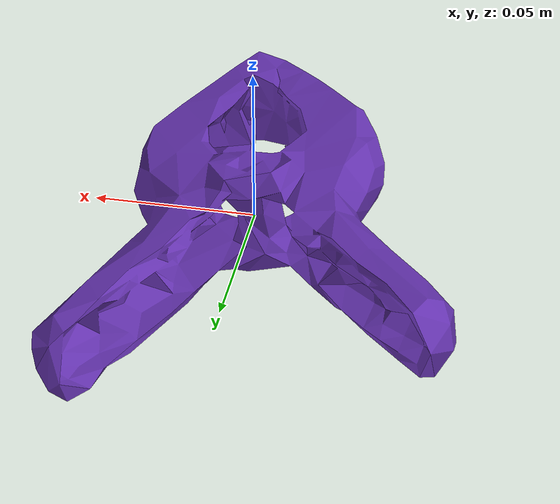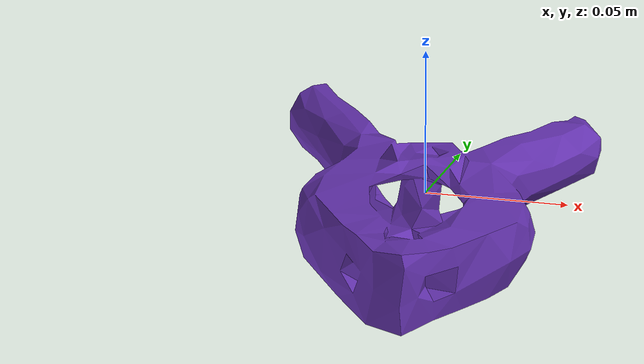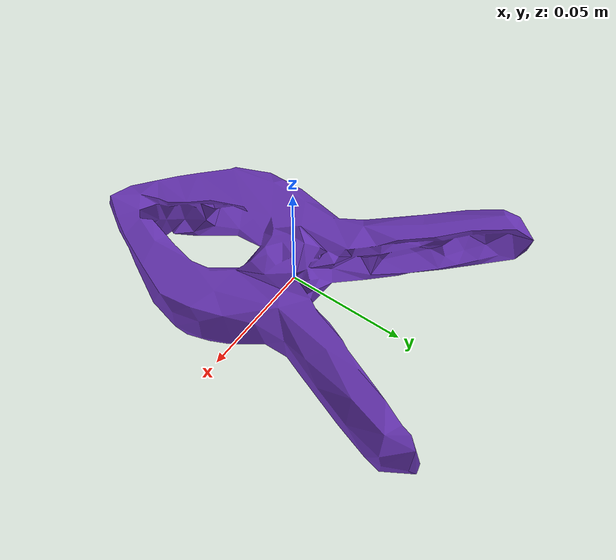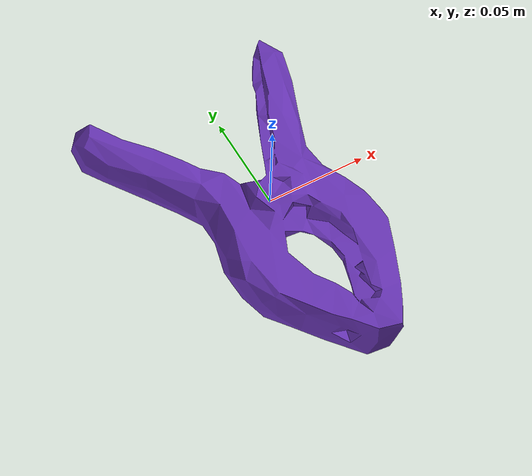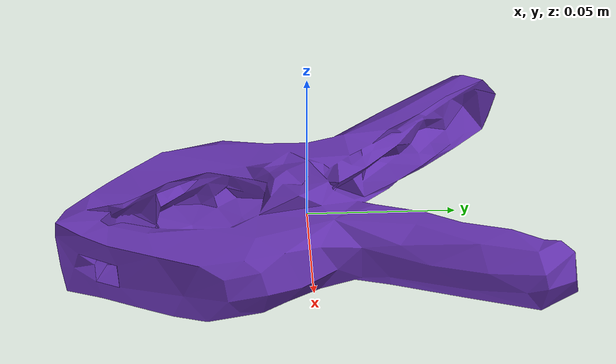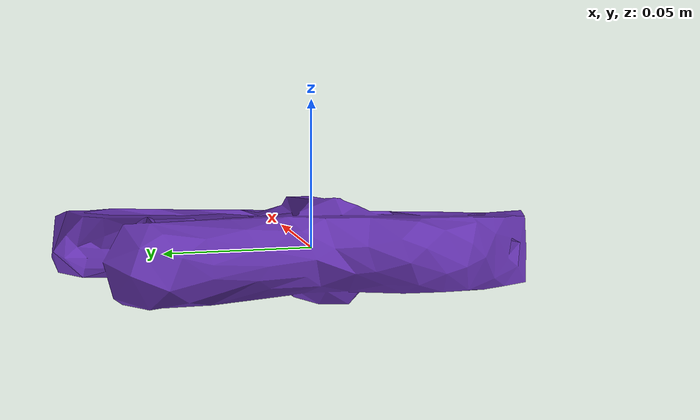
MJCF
<mujoco model="top_watertight_tiny">

  <asset>
    <mesh file="top_watertight_tiny.obj"/>
    <mesh file="top_watertight_tiny_collision_0.obj"/>
    <mesh file="top_watertight_tiny_collision_1.obj"/>
    <mesh file="top_watertight_tiny_collision_2.obj"/>
    <mesh file="top_watertight_tiny_collision_3.obj"/>
    <mesh file="top_watertight_tiny_collision_4.obj"/>
    <mesh file="top_watertight_tiny_collision_5.obj"/>
    <mesh file="top_watertight_tiny_collision_6.obj"/>
    <mesh file="top_watertight_tiny_collision_7.obj"/>
    <mesh file="top_watertight_tiny_collision_8.obj"/>
    <mesh file="top_watertight_tiny_collision_9.obj"/>
    <mesh file="top_watertight_tiny_collision_10.obj"/>
    <mesh file="top_watertight_tiny_collision_11.obj"/>
    <mesh file="top_watertight_tiny_collision_12.obj"/>
    <mesh file="top_watertight_tiny_collision_13.obj"/>
    <mesh file="top_watertight_tiny_collision_14.obj"/>
    <mesh file="top_watertight_tiny_collision_15.obj"/>
    <mesh file="top_watertight_tiny_collision_16.obj"/>
    <mesh file="top_watertight_tiny_collision_17.obj"/>
    <mesh file="top_watertight_tiny_collision_18.obj"/>
    <mesh file="top_watertight_tiny_collision_19.obj"/>
    <mesh file="top_watertight_tiny_collision_20.obj"/>
    <mesh file="top_watertight_tiny_collision_21.obj"/>
    <mesh file="top_watertight_tiny_collision_22.obj"/>
    <mesh file="top_watertight_tiny_collision_23.obj"/>
    <mesh file="top_watertight_tiny_collision_24.obj"/>
    <mesh file="top_watertight_tiny_collision_25.obj"/>
    <mesh file="top_watertight_tiny_collision_26.obj"/>
    <mesh file="top_watertight_tiny_collision_27.obj"/>
    <mesh file="top_watertight_tiny_collision_28.obj"/>
    <mesh file="top_watertight_tiny_collision_29.obj"/>
    <mesh file="top_watertight_tiny_collision_30.obj"/>
    <mesh file="top_watertight_tiny_collision_31.obj"/>
    <mesh file="top_watertight_tiny_collision_32.obj"/>
    <mesh file="top_watertight_tiny_collision_33.obj"/>
    <mesh file="top_watertight_tiny_collision_34.obj"/>
    <mesh file="top_watertight_tiny_collision_35.obj"/>
    <mesh file="top_watertight_tiny_collision_36.obj"/>
    <mesh file="top_watertight_tiny_collision_37.obj"/>
    <mesh file="top_watertight_tiny_collision_38.obj"/>
    <mesh file="top_watertight_tiny_collision_39.obj"/>
    <mesh file="top_watertight_tiny_collision_40.obj"/>
    <mesh file="top_watertight_tiny_collision_41.obj"/>
    <mesh file="top_watertight_tiny_collision_42.obj"/>
    <mesh file="top_watertight_tiny_collision_43.obj"/>
    <mesh file="top_watertight_tiny_collision_44.obj"/>
    <mesh file="top_watertight_tiny_collision_45.obj"/>
    <mesh file="top_watertight_tiny_collision_46.obj"/>
    <mesh file="top_watertight_tiny_collision_47.obj"/>
    <mesh file="top_watertight_tiny_collision_48.obj"/>
    <mesh file="top_watertight_tiny_collision_49.obj"/>
    <mesh file="top_watertight_tiny_collision_50.obj"/>
    <mesh file="top_watertight_tiny_collision_51.obj"/>
    <mesh file="top_watertight_tiny_collision_52.obj"/>
    <mesh file="top_watertight_tiny_collision_53.obj"/>
    <mesh file="top_watertight_tiny_collision_54.obj"/>
    <mesh file="top_watertight_tiny_collision_55.obj"/>
    <mesh file="top_watertight_tiny_collision_56.obj"/>
    <mesh file="top_watertight_tiny_collision_57.obj"/>
    <mesh file="top_watertight_tiny_collision_58.obj"/>
    <mesh file="top_watertight_tiny_collision_59.obj"/>
    <mesh file="top_watertight_tiny_collision_60.obj"/>
    <mesh file="top_watertight_tiny_collision_61.obj"/>
  </asset>
  <worldbody>
    <body name="top_watertight_tiny">
      <freejoint/>
      <geom solimp="0.90 0.95 0.001" solref="0.02 1.0" density="100" friction="0.95 0.4 0.3" rgba="0.4 0.2 0.7 1" mesh="top_watertight_tiny" group="2" type="mesh" contype="0" conaffinity="0"/>
      <geom solimp="0.90 0.95 0.001" solref="0.02 1.0" density="100" friction="0.95 0.4 0.3" mesh="top_watertight_tiny_collision_0" rgba="0.46268127099822176 0.44613543929367694 0.6037512424551649 1" group="3" type="mesh"/>
      <geom solimp="0.90 0.95 0.001" solref="0.02 1.0" density="100" friction="0.95 0.4 0.3" mesh="top_watertight_tiny_collision_1" rgba="0.57390092260208 0.13734698815139423 0.11121147662220487 1" group="3" type="mesh"/>
      <geom solimp="0.90 0.95 0.001" solref="0.02 1.0" density="100" friction="0.95 0.4 0.3" mesh="top_watertight_tiny_collision_2" rgba="0.6755386977435273 0.8623598723239746 0.5593617677768191 1" group="3" type="mesh"/>
      <geom solimp="0.90 0.95 0.001" solref="0.02 1.0" density="100" friction="0.95 0.4 0.3" mesh="top_watertight_tiny_collision_3" rgba="0.9710695342765243 0.6719415622387462 0.7965022479027059 1" group="3" type="mesh"/>
      <geom solimp="0.90 0.95 0.001" solref="0.02 1.0" density="100" friction="0.95 0.4 0.3" mesh="top_watertight_tiny_collision_4" rgba="0.06658857949424368 0.44778342721501463 0.37577722353769716 1" group="3" type="mesh"/>
      <geom solimp="0.90 0.95 0.001" solref="0.02 1.0" density="100" friction="0.95 0.4 0.3" mesh="top_watertight_tiny_collision_5" rgba="0.8515932548861951 0.6058850084302767 0.8633722867348466 1" group="3" type="mesh"/>
      <geom solimp="0.90 0.95 0.001" solref="0.02 1.0" density="100" friction="0.95 0.4 0.3" mesh="top_watertight_tiny_collision_6" rgba="0.06017040027398923 0.2171380553857437 0.9439310942401248 1" group="3" type="mesh"/>
      <geom solimp="0.90 0.95 0.001" solref="0.02 1.0" density="100" friction="0.95 0.4 0.3" mesh="top_watertight_tiny_collision_7" rgba="0.06775633607417253 0.3916701696194047 0.9878024062193546 1" group="3" type="mesh"/>
      <geom solimp="0.90 0.95 0.001" solref="0.02 1.0" density="100" friction="0.95 0.4 0.3" mesh="top_watertight_tiny_collision_8" rgba="0.20479055116830502 0.2372548679240042 0.9605887124626827 1" group="3" type="mesh"/>
      <geom solimp="0.90 0.95 0.001" solref="0.02 1.0" density="100" friction="0.95 0.4 0.3" mesh="top_watertight_tiny_collision_9" rgba="0.8802977203090246 0.23515415765177394 0.5383413918563811 1" group="3" type="mesh"/>
      <geom solimp="0.90 0.95 0.001" solref="0.02 1.0" density="100" friction="0.95 0.4 0.3" mesh="top_watertight_tiny_collision_10" rgba="0.2616393884726739 0.7895112124847435 0.14673366645719144 1" group="3" type="mesh"/>
      <geom solimp="0.90 0.95 0.001" solref="0.02 1.0" density="100" friction="0.95 0.4 0.3" mesh="top_watertight_tiny_collision_11" rgba="0.37939304599245294 0.5714784149014092 0.22508265824461438 1" group="3" type="mesh"/>
      <geom solimp="0.90 0.95 0.001" solref="0.02 1.0" density="100" friction="0.95 0.4 0.3" mesh="top_watertight_tiny_collision_12" rgba="0.277049074968967 0.9305881327906584 0.34751073747689676 1" group="3" type="mesh"/>
      <geom solimp="0.90 0.95 0.001" solref="0.02 1.0" density="100" friction="0.95 0.4 0.3" mesh="top_watertight_tiny_collision_13" rgba="0.9001801481248393 0.9834714920245772 0.5157571940747403 1" group="3" type="mesh"/>
      <geom solimp="0.90 0.95 0.001" solref="0.02 1.0" density="100" friction="0.95 0.4 0.3" mesh="top_watertight_tiny_collision_14" rgba="0.19876518593322468 0.3565296516964015 0.2689963262483561 1" group="3" type="mesh"/>
      <geom solimp="0.90 0.95 0.001" solref="0.02 1.0" density="100" friction="0.95 0.4 0.3" mesh="top_watertight_tiny_collision_15" rgba="0.5848611630302968 0.55350986448608 0.06476318390182201 1" group="3" type="mesh"/>
      <geom solimp="0.90 0.95 0.001" solref="0.02 1.0" density="100" friction="0.95 0.4 0.3" mesh="top_watertight_tiny_collision_16" rgba="0.22822790384600056 0.40235282190474086 0.1333671136917367 1" group="3" type="mesh"/>
      <geom solimp="0.90 0.95 0.001" solref="0.02 1.0" density="100" friction="0.95 0.4 0.3" mesh="top_watertight_tiny_collision_17" rgba="0.24737108595192348 0.8352502356035749 0.09507051922961851 1" group="3" type="mesh"/>
      <geom solimp="0.90 0.95 0.001" solref="0.02 1.0" density="100" friction="0.95 0.4 0.3" mesh="top_watertight_tiny_collision_18" rgba="0.5845121004278806 0.373227917386719 0.7436200473185841 1" group="3" type="mesh"/>
      <geom solimp="0.90 0.95 0.001" solref="0.02 1.0" density="100" friction="0.95 0.4 0.3" mesh="top_watertight_tiny_collision_19" rgba="0.3673344876905159 0.6127818201218921 0.0715213816365532 1" group="3" type="mesh"/>
      <geom solimp="0.90 0.95 0.001" solref="0.02 1.0" density="100" friction="0.95 0.4 0.3" mesh="top_watertight_tiny_collision_20" rgba="0.8249614752242393 0.2644502075870059 0.41761232987629415 1" group="3" type="mesh"/>
      <geom solimp="0.90 0.95 0.001" solref="0.02 1.0" density="100" friction="0.95 0.4 0.3" mesh="top_watertight_tiny_collision_21" rgba="0.9827943860031765 0.15170056447137048 0.9934812945019279 1" group="3" type="mesh"/>
      <geom solimp="0.90 0.95 0.001" solref="0.02 1.0" density="100" friction="0.95 0.4 0.3" mesh="top_watertight_tiny_collision_22" rgba="0.1193889918687685 0.3339243280920533 0.6554278990363508 1" group="3" type="mesh"/>
      <geom solimp="0.90 0.95 0.001" solref="0.02 1.0" density="100" friction="0.95 0.4 0.3" mesh="top_watertight_tiny_collision_23" rgba="0.05313563911766328 0.14904314981159195 0.2844856202689452 1" group="3" type="mesh"/>
      <geom solimp="0.90 0.95 0.001" solref="0.02 1.0" density="100" friction="0.95 0.4 0.3" mesh="top_watertight_tiny_collision_24" rgba="0.8108036756317544 0.030333149405684434 0.6839800201838122 1" group="3" type="mesh"/>
      <geom solimp="0.90 0.95 0.001" solref="0.02 1.0" density="100" friction="0.95 0.4 0.3" mesh="top_watertight_tiny_collision_25" rgba="0.1130211126690791 0.11144736031547531 0.6183930559824004 1" group="3" type="mesh"/>
      <geom solimp="0.90 0.95 0.001" solref="0.02 1.0" density="100" friction="0.95 0.4 0.3" mesh="top_watertight_tiny_collision_26" rgba="0.707380617322636 0.033008273557914025 0.8685465430292756 1" group="3" type="mesh"/>
      <geom solimp="0.90 0.95 0.001" solref="0.02 1.0" density="100" friction="0.95 0.4 0.3" mesh="top_watertight_tiny_collision_27" rgba="0.8217291807131685 0.7227193086632488 0.4002978587569074 1" group="3" type="mesh"/>
      <geom solimp="0.90 0.95 0.001" solref="0.02 1.0" density="100" friction="0.95 0.4 0.3" mesh="top_watertight_tiny_collision_28" rgba="0.2072229673541176 0.2732958342204459 0.7779108382252461 1" group="3" type="mesh"/>
      <geom solimp="0.90 0.95 0.001" solref="0.02 1.0" density="100" friction="0.95 0.4 0.3" mesh="top_watertight_tiny_collision_29" rgba="0.017417326645723374 0.3266246698559121 0.8533430043032761 1" group="3" type="mesh"/>
      <geom solimp="0.90 0.95 0.001" solref="0.02 1.0" density="100" friction="0.95 0.4 0.3" mesh="top_watertight_tiny_collision_30" rgba="0.9318469828068848 0.5117458162108749 0.957208771522807 1" group="3" type="mesh"/>
      <geom solimp="0.90 0.95 0.001" solref="0.02 1.0" density="100" friction="0.95 0.4 0.3" mesh="top_watertight_tiny_collision_31" rgba="0.746561739475011 0.4229759776881509 0.6351979050445542 1" group="3" type="mesh"/>
      <geom solimp="0.90 0.95 0.001" solref="0.02 1.0" density="100" friction="0.95 0.4 0.3" mesh="top_watertight_tiny_collision_32" rgba="0.5739813623237269 0.9862021797471946 0.8491444784080426 1" group="3" type="mesh"/>
      <geom solimp="0.90 0.95 0.001" solref="0.02 1.0" density="100" friction="0.95 0.4 0.3" mesh="top_watertight_tiny_collision_33" rgba="0.4700256256167118 0.2244620488179655 0.3011971142824278 1" group="3" type="mesh"/>
      <geom solimp="0.90 0.95 0.001" solref="0.02 1.0" density="100" friction="0.95 0.4 0.3" mesh="top_watertight_tiny_collision_34" rgba="0.6567692623380379 0.8102504679025803 0.53910210475755 1" group="3" type="mesh"/>
      <geom solimp="0.90 0.95 0.001" solref="0.02 1.0" density="100" friction="0.95 0.4 0.3" mesh="top_watertight_tiny_collision_35" rgba="0.9359159994177946 0.07298062694813934 0.20618200740306847 1" group="3" type="mesh"/>
      <geom solimp="0.90 0.95 0.001" solref="0.02 1.0" density="100" friction="0.95 0.4 0.3" mesh="top_watertight_tiny_collision_36" rgba="0.7632060091382233 0.019168522189462744 0.22155220512414386 1" group="3" type="mesh"/>
      <geom solimp="0.90 0.95 0.001" solref="0.02 1.0" density="100" friction="0.95 0.4 0.3" mesh="top_watertight_tiny_collision_37" rgba="0.7572314595555747 0.10336005960443362 0.12290151737012966 1" group="3" type="mesh"/>
      <geom solimp="0.90 0.95 0.001" solref="0.02 1.0" density="100" friction="0.95 0.4 0.3" mesh="top_watertight_tiny_collision_38" rgba="0.7944489093459598 0.8285071532182623 0.5816944680963141 1" group="3" type="mesh"/>
      <geom solimp="0.90 0.95 0.001" solref="0.02 1.0" density="100" friction="0.95 0.4 0.3" mesh="top_watertight_tiny_collision_39" rgba="0.6369539292712871 0.6533603775478976 0.8807150313937363 1" group="3" type="mesh"/>
      <geom solimp="0.90 0.95 0.001" solref="0.02 1.0" density="100" friction="0.95 0.4 0.3" mesh="top_watertight_tiny_collision_40" rgba="0.3670596385904249 0.9559412514282833 0.3203810496028757 1" group="3" type="mesh"/>
      <geom solimp="0.90 0.95 0.001" solref="0.02 1.0" density="100" friction="0.95 0.4 0.3" mesh="top_watertight_tiny_collision_41" rgba="0.7546759554390982 0.9817521792359843 0.37245721642694807 1" group="3" type="mesh"/>
      <geom solimp="0.90 0.95 0.001" solref="0.02 1.0" density="100" friction="0.95 0.4 0.3" mesh="top_watertight_tiny_collision_42" rgba="0.7519702265149919 0.8563182951392837 0.6983172211476657 1" group="3" type="mesh"/>
      <geom solimp="0.90 0.95 0.001" solref="0.02 1.0" density="100" friction="0.95 0.4 0.3" mesh="top_watertight_tiny_collision_43" rgba="0.31785569986656526 0.7976609008328917 0.7724578473378445 1" group="3" type="mesh"/>
      <geom solimp="0.90 0.95 0.001" solref="0.02 1.0" density="100" friction="0.95 0.4 0.3" mesh="top_watertight_tiny_collision_44" rgba="0.9709020168817861 0.014983967384614938 0.6967217181741179 1" group="3" type="mesh"/>
      <geom solimp="0.90 0.95 0.001" solref="0.02 1.0" density="100" friction="0.95 0.4 0.3" mesh="top_watertight_tiny_collision_45" rgba="0.40175635901011797 0.7167245440545567 0.9562492914527109 1" group="3" type="mesh"/>
      <geom solimp="0.90 0.95 0.001" solref="0.02 1.0" density="100" friction="0.95 0.4 0.3" mesh="top_watertight_tiny_collision_46" rgba="0.20715356419301056 0.11271595945632995 0.42980715008039305 1" group="3" type="mesh"/>
      <geom solimp="0.90 0.95 0.001" solref="0.02 1.0" density="100" friction="0.95 0.4 0.3" mesh="top_watertight_tiny_collision_47" rgba="0.8782544611872798 0.53489543370042 0.11161747612792117 1" group="3" type="mesh"/>
      <geom solimp="0.90 0.95 0.001" solref="0.02 1.0" density="100" friction="0.95 0.4 0.3" mesh="top_watertight_tiny_collision_48" rgba="0.7387500604422994 0.05547313574824131 0.21564231056035799 1" group="3" type="mesh"/>
      <geom solimp="0.90 0.95 0.001" solref="0.02 1.0" density="100" friction="0.95 0.4 0.3" mesh="top_watertight_tiny_collision_49" rgba="0.6406767866467648 0.07387042632754559 0.33493277152359835 1" group="3" type="mesh"/>
      <geom solimp="0.90 0.95 0.001" solref="0.02 1.0" density="100" friction="0.95 0.4 0.3" mesh="top_watertight_tiny_collision_50" rgba="0.40241350855542957 0.7707488882635092 0.5268002355838377 1" group="3" type="mesh"/>
      <geom solimp="0.90 0.95 0.001" solref="0.02 1.0" density="100" friction="0.95 0.4 0.3" mesh="top_watertight_tiny_collision_51" rgba="0.9376188431863697 0.6918709556254893 0.9201740822484723 1" group="3" type="mesh"/>
      <geom solimp="0.90 0.95 0.001" solref="0.02 1.0" density="100" friction="0.95 0.4 0.3" mesh="top_watertight_tiny_collision_52" rgba="0.42142385258311177 0.6902989969683868 0.7731904664788538 1" group="3" type="mesh"/>
      <geom solimp="0.90 0.95 0.001" solref="0.02 1.0" density="100" friction="0.95 0.4 0.3" mesh="top_watertight_tiny_collision_53" rgba="0.316129196637824 0.02907120903420879 0.15491360416319377 1" group="3" type="mesh"/>
      <geom solimp="0.90 0.95 0.001" solref="0.02 1.0" density="100" friction="0.95 0.4 0.3" mesh="top_watertight_tiny_collision_54" rgba="0.33172470642279983 0.9811486549206623 0.3049611647316829 1" group="3" type="mesh"/>
      <geom solimp="0.90 0.95 0.001" solref="0.02 1.0" density="100" friction="0.95 0.4 0.3" mesh="top_watertight_tiny_collision_55" rgba="0.013308416773845422 0.4785871639498325 0.9719584545803245 1" group="3" type="mesh"/>
      <geom solimp="0.90 0.95 0.001" solref="0.02 1.0" density="100" friction="0.95 0.4 0.3" mesh="top_watertight_tiny_collision_56" rgba="0.5830624734425695 0.2154117823774393 0.08195421642583489 1" group="3" type="mesh"/>
      <geom solimp="0.90 0.95 0.001" solref="0.02 1.0" density="100" friction="0.95 0.4 0.3" mesh="top_watertight_tiny_collision_57" rgba="0.17183863478304984 0.7773583067211689 0.2583027912886571 1" group="3" type="mesh"/>
      <geom solimp="0.90 0.95 0.001" solref="0.02 1.0" density="100" friction="0.95 0.4 0.3" mesh="top_watertight_tiny_collision_58" rgba="0.8157475167195796 0.6145164523599924 0.7786999610687267 1" group="3" type="mesh"/>
      <geom solimp="0.90 0.95 0.001" solref="0.02 1.0" density="100" friction="0.95 0.4 0.3" mesh="top_watertight_tiny_collision_59" rgba="0.6861770636072051 0.47923908391130077 0.9749913143956959 1" group="3" type="mesh"/>
      <geom solimp="0.90 0.95 0.001" solref="0.02 1.0" density="100" friction="0.95 0.4 0.3" mesh="top_watertight_tiny_collision_60" rgba="0.43747350527154427 0.9055740336630914 0.9159530205837589 1" group="3" type="mesh"/>
      <geom solimp="0.90 0.95 0.001" solref="0.02 1.0" density="100" friction="0.95 0.4 0.3" mesh="top_watertight_tiny_collision_61" rgba="0.33903867096292584 0.951936893708873 0.3733504978853024 1" group="3" type="mesh"/>
    </body>
  </worldbody>
</mujoco>
